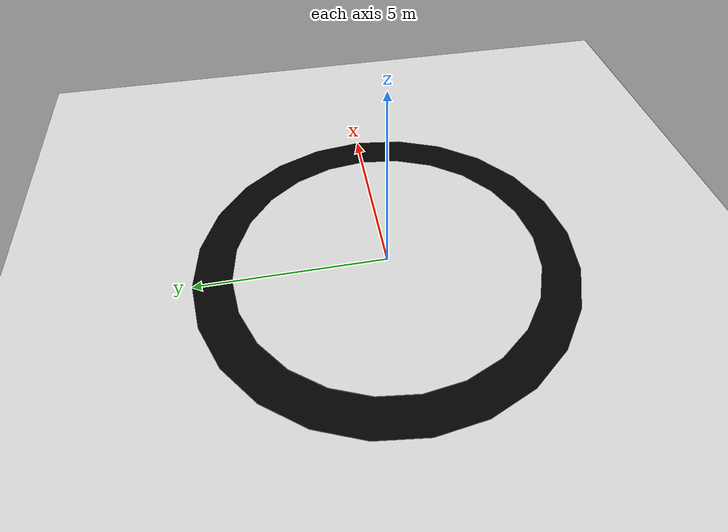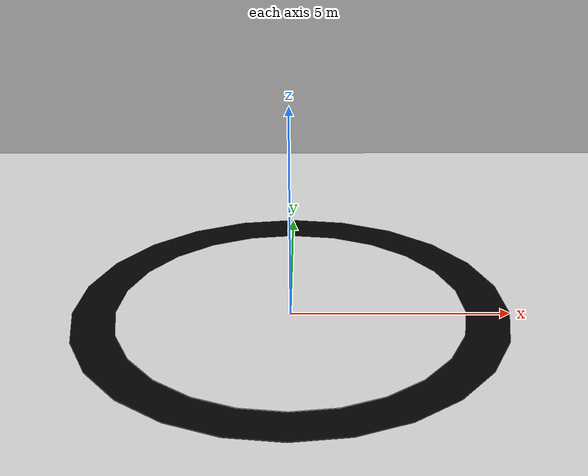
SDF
<?xml version="1.0" ?>
<sdf version="1.7">
  <world name="circular_lane_world">
    <!-- Ground Plane -->
    <model name="ground_plane">
      <static>true</static>
      <link name="ground_link">
        <collision name="collision">
          <geometry>
            <plane>
              <normal>0 0 1</normal>
              <size>100 100</size>
            </plane>
          </geometry>
          <surface>
            <friction>
              <ode>
                <mu>0.6</mu>
                <mu2>0.6</mu2>
              </ode>
            </friction>
          </surface>
        </collision>
        <visual name="visual">
          <geometry>
            <plane>
              <normal>0 0 1</normal>
              <size>100 100</size>
            </plane>
          </geometry>
          <material>
            <ambient>0.8 0.8 0.8 1</ambient>
            <diffuse>0.8 0.8 0.8 1</diffuse>
          </material>
        </visual>
      </link>
    </model>

    <!-- Circular Lane -->
    <model name="circular_lane">
      <static>true</static>
      <pose>0 0 0.01 0 0 0</pose>
      <link name="lane_link">
        <visual name="lane_visual">
          <geometry>
            <cylinder>
              <radius>5</radius>
              <length>0.02</length>
            </cylinder>
          </geometry>
          <material>
            <ambient>0 0 0 1</ambient>
            <diffuse>0 0 0 1</diffuse>
            <specular>0 0 0 1</specular>
          </material>
        </visual>
        <!-- Inner cutout to create a ring (lane) -->
        <visual name="inner_cutout">
          <pose>0 0 0.01 0 0 0</pose>
          <geometry>
            <cylinder>
              <radius>4</radius>
              <length>0.04</length>
            </cylinder>
          </geometry>
          <material>
            <ambient>0.8 0.8 0.8 1</ambient>
            <diffuse>0.8 0.8 0.8 1</diffuse>
          </material>
        </visual>
      </link>
    </model>

    <!-- Light Source -->
    <light name="sun" type="directional">
      <pose>0 0 10 0 0 0</pose>
      <diffuse>0.8 0.8 0.8 1</diffuse>
      <specular>0.2 0.2 0.2 1</specular>
      <direction>0.1 0.1 -0.9</direction>
    </light>

    <!-- Physics -->
    <physics type="ode">
      <max_step_size>0.001</max_step_size>
      <real_time_factor>1</real_time_factor>
      <real_time_update_rate>1000</real_time_update_rate>
    </physics>

    <!-- Scene -->
    <scene>
      <ambient>0.4 0.4 0.4 1</ambient>
      <background>0.7 0.7 0.7 1</background>
      <shadows>true</shadows>
    </scene>
  </world>
</sdf>
